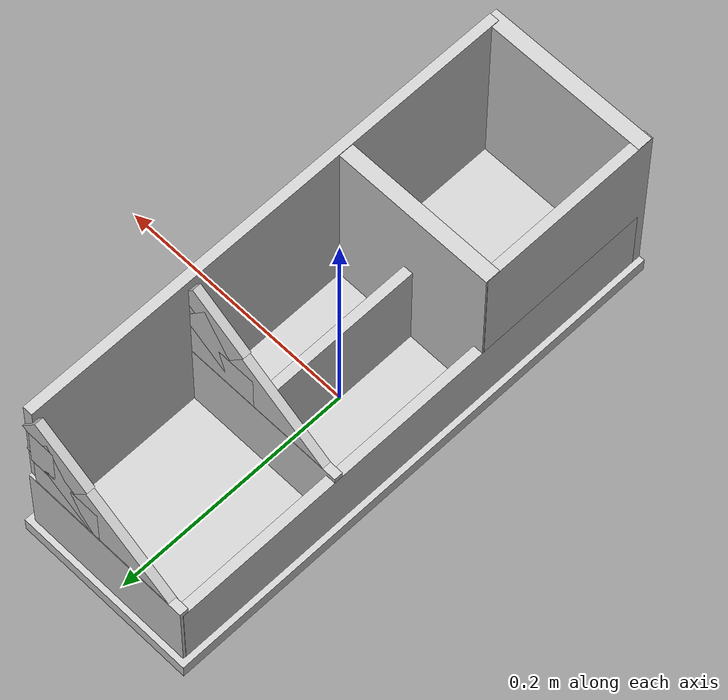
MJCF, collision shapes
<mujoco model="desk_caddy">
  <asset>
  <texture file="desk_caddy_texture.png" name="tex-desk_caddy" type="2d" />
  <material name="desk_caddy" reflectance="0.5" texrepeat="1 1" texture="tex-desk_caddy" texuniform="false" />
  <mesh file="visual/desk_caddy_vis.msh" name="desk_caddy_vis" scale="1.5 1.5 1.5" /></asset>
  <worldbody>
    <body>
      <body name="object">
      <inertial pos="0 0.082 0.085" mass="0.30" diaginertia="0.0040 0.0018 0.0048"/>
      <site type="box" pos="0.00631 -0.14339 0.06558" quat="0.00000 0.00000 1.00000 0.00000" size="0.06196 0.06216 0.06046" name="right_contain_region" rgba="0.8 0.8 0.8 0.0"/>
      <site type="box" pos="0.00631 0.14551 0.06558" quat="0.00000 0.00000 1.00000 0.00000" size="0.06196 0.06216 0.06046" name="left_contain_region" rgba="0.8 0.8 0.8 0.0"/>
      <site type="box" pos="0.03364 -0.00064 0.08558" quat="0.00000 0.00000 1.00000 0.00000" size="0.02775 0.06216 0.06046" name="back_contain_region" rgba="0.8 0.8 0.8 0.0"/>
      <site type="box" pos="-0.03102 -0.00064 0.04054" quat="0.00000 -0.00000 0.70711 -0.70711" size="0.02775 0.03595 0.06216" name="front_contain_region" rgba="0.8 0.8 0.8 0.0"/>
      <geom name="patched_flat_foot" type="box" pos="0 0 0.002" size="0.067 0.205 0.002" density="0" group="0" friction="0.95 0.3 0.1" solimp="0.998 0.998 0.001" solref="0.001 1" rgba="0.8 0.8 0.8 0.0"/>
      <geom solimp="0.998 0.998 0.001" solref="0.001 1" density="100" friction="0.95 0.3 0.1" type="mesh" mesh="desk_caddy_vis" conaffinity="0" contype="0" group="1" material="desk_caddy" /><geom solimp="0.998 0.998 0.001" solref="0.001 1" density="100" friction="0.95 0.3 0.1" type="box" pos="-0.00000 0.00000 0.00760" quat="0.50000 -0.50000 0.50000 0.50000" size="0.00621 0.07550 0.21688" group="0" rgba="0.8 0.8 0.8 0.3" /><geom solimp="0.998 0.998 0.001" solref="0.001 1" density="100" friction="0.95 0.3 0.1" type="box" pos="0.00000 -0.06804 0.08502" quat="0.00000 0.70711 0.70711 0.00000" size="0.00620 0.07062 0.08239" group="0" rgba="0.8 0.8 0.8 0.3" /><geom solimp="0.998 0.998 0.001" solref="0.001 1" density="100" friction="0.95 0.3 0.1" type="box" pos="-0.00000 -0.20940 0.08502" quat="0.70711 -0.00000 -0.00000 -0.70711" size="0.00620 0.07062 0.08239" group="0" rgba="0.8 0.8 0.8 0.3" /><geom solimp="0.998 0.998 0.001" solref="0.001 1" density="100" friction="0.95 0.3 0.1" type="box" pos="0.06680 -0.00000 0.08677" quat="0.70711 0.70711 0.00000 -0.00000" size="0.00403 0.08152 0.20980" group="0" rgba="0.8 0.8 0.8 0.3" /><geom solimp="0.998 0.998 0.001" solref="0.001 1" density="100" friction="0.95 0.3 0.1" type="box" pos="-0.00156 0.00000 0.05524" quat="0.70711 0.70711 0.00000 -0.00000" size="0.00403 0.04341 0.06684" group="0" rgba="0.8 0.8 0.8 0.3" /><geom solimp="0.998 0.998 0.001" solref="0.001 1" density="100" friction="0.95 0.3 0.1" type="box" pos="0.00000 0.20861 0.04523" quat="0.50000 0.50000 -0.50000 -0.50000" size="0.00359 0.03330 0.07062" group="0" rgba="0.8 0.8 0.8 0.3" /><geom solimp="0.998 0.998 0.001" solref="0.001 1" density="100" friction="0.95 0.3 0.1" type="box" pos="0.03452 0.07058 0.07485" quat="0.00000 0.70711 0.70711 0.00000" size="0.00359 0.02992 0.03675" group="0" rgba="0.8 0.8 0.8 0.3" /><geom solimp="0.998 0.998 0.001" solref="0.001 1" density="100" friction="0.95 0.3 0.1" type="box" pos="-0.06687 0.00000 0.03952" quat="0.70711 0.70711 0.00000 -0.00000" size="0.00403 0.03455 0.20980" group="0" rgba="0.8 0.8 0.8 0.3" /><geom solimp="0.998 0.998 0.001" solref="0.001 1" density="100" friction="0.95 0.3 0.1" type="box" pos="-0.06687 -0.13977 0.08769" quat="0.00000 0.00000 1.00000 0.00000" size="0.00403 0.07663 0.07961" group="0" rgba="0.8 0.8 0.8 0.3" /><geom solimp="0.998 0.998 0.001" solref="0.001 1" density="100" friction="0.95 0.3 0.1" type="box" pos="-0.00000 0.07058 0.09451" quat="0.62692 0.32706 0.32706 0.62692" size="0.00359 0.02094 0.07062" group="0" rgba="0.8 0.8 0.8 0.3" /><geom solimp="0.998 0.998 0.001" solref="0.001 1" density="100" friction="0.95 0.3 0.1" type="box" pos="0.04227 0.07058 0.13866" quat="0.62756 -0.32583 0.32583 -0.62757" size="0.00359 0.01135 0.02792" group="0" rgba="0.8 0.8 0.8 0.3" /><geom solimp="0.998 0.998 0.001" solref="0.001 1" density="100" friction="0.95 0.3 0.1" type="box" pos="-0.00000 0.07073 0.04523" quat="0.50000 0.50000 -0.50000 -0.50000" size="0.00359 0.03330 0.07062" group="0" rgba="0.8 0.8 0.8 0.3" /><geom solimp="0.998 0.998 0.001" solref="0.001 1" density="100" friction="0.95 0.3 0.1" type="box" pos="0.04179 0.20821 0.13866" quat="0.62756 -0.32583 0.32583 -0.62757" size="0.00359 0.01135 0.02792" group="0" rgba="0.8 0.8 0.8 0.3" /><geom solimp="0.998 0.998 0.001" solref="0.001 1" density="100" friction="0.95 0.3 0.1" type="box" pos="-0.00000 0.20821 0.09451" quat="0.32706 0.62692 -0.62692 -0.32706" size="0.00359 0.02094 0.07062" group="0" rgba="0.8 0.8 0.8 0.3" /><geom solimp="0.998 0.998 0.001" solref="0.001 1" density="100" friction="0.95 0.3 0.1" type="box" pos="0.03452 0.20821 0.07485" quat="0.00000 -0.70711 0.70711 -0.00000" size="0.00359 0.02992 0.03675" group="0" rgba="0.8 0.8 0.8 0.3" /><geom solimp="0.998 0.998 0.001" solref="0.001 1" density="100" friction="0.95 0.3 0.1" type="box" pos="0.05494 0.20821 0.12363" quat="0.70709 0.00466 -0.00466 -0.70709" size="0.00359 0.01135 0.01882" group="0" rgba="0.8 0.8 0.8 0.3" /><geom solimp="0.998 0.998 0.001" solref="0.001 1" density="100" friction="0.95 0.3 0.1" type="box" pos="0.05494 0.07035 0.12363" quat="0.70709 0.00466 -0.00466 -0.70709" size="0.00359 0.01135 0.01882" group="0" rgba="0.8 0.8 0.8 0.3" /></body>
      <site rgba="0 0 0 0" size="0.005" pos="0 0 -0.06" name="bottom_site" />
      <site rgba="0 0 0 0" size="0.005" pos="0 0 0.04" name="top_site" />
      <site rgba="0 0 0 0" size="0.005" pos="0.025 0.025 0" name="horizontal_radius_site" />
    </body>
  </worldbody>
</mujoco>
